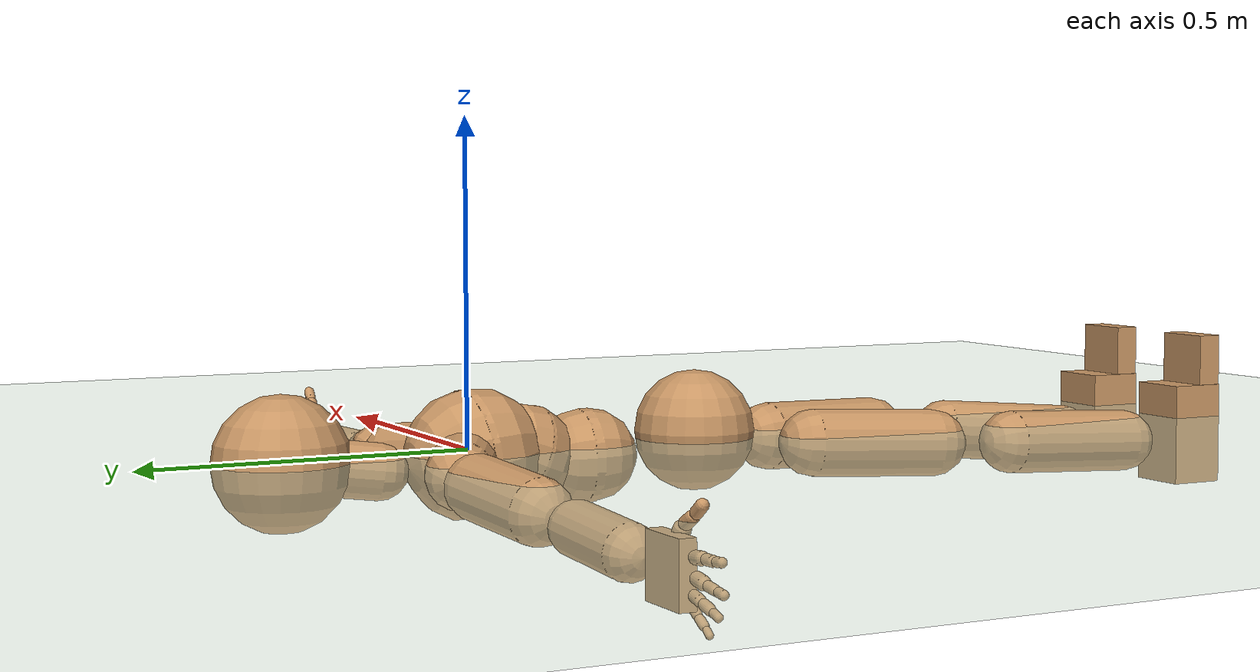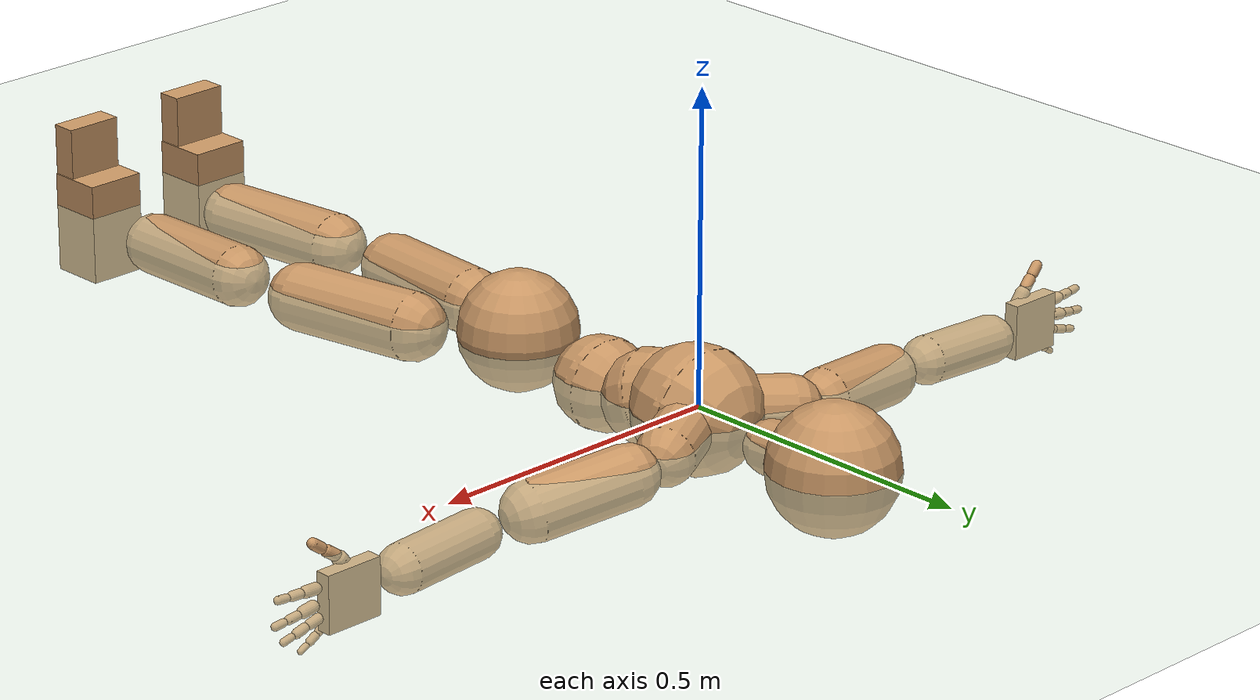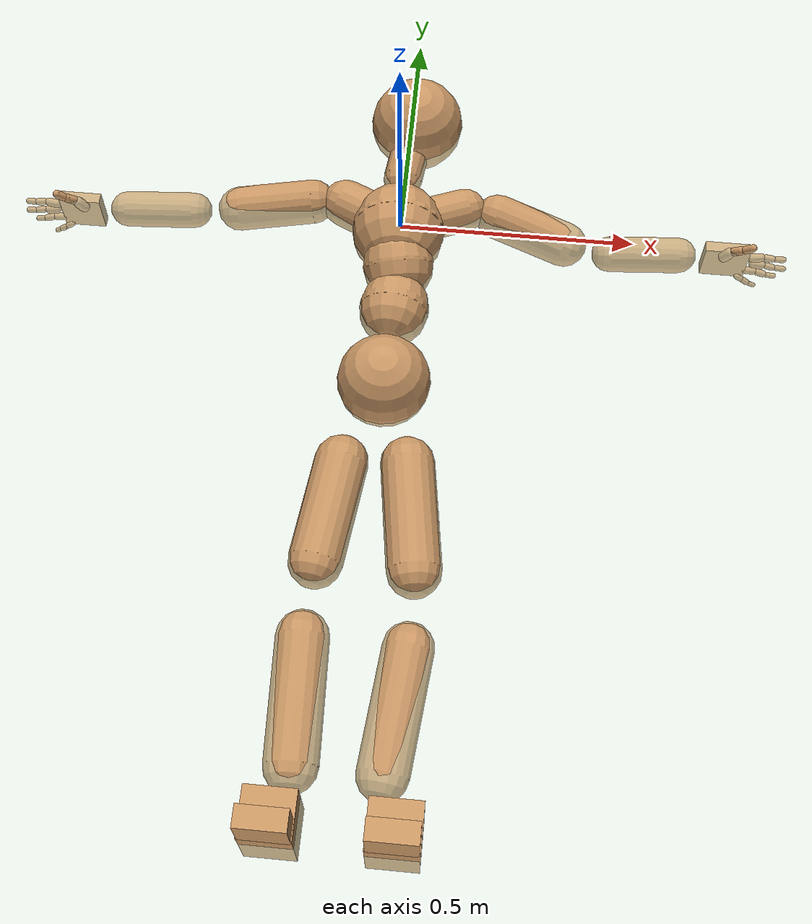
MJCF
<mujoco model="humanoid">
  <compiler coordinate="local"/>
  <default>
    <joint damping="0.0" armature="0.01" stiffness="0.0" limited="true"/>
    <geom conaffinity="1" condim="3" contype="7" margin="0.001" rgba="0.8 0.6 .4 1"/>
  </default>
  <asset>
    <texture type="skybox" builtin="gradient" rgb1=".4 .5 .6" rgb2="0 0 0" width="100" height="100"/>
    <texture builtin="flat" height="1278" mark="cross" markrgb="1 1 1" name="texgeom" random="0.01" rgb1="0.8 0.6 0.4" rgb2="0.8 0.6 0.4" type="cube" width="127"/>
    <texture builtin="checker" height="100" name="texplane" rgb1="0 0 0" rgb2="0.8 0.8 0.8" type="2d" width="100"/>
    <material name="MatPlane" reflectance="0.5" shininess="1" specular="1" texrepeat="60 60" texture="texplane"/>
    <material name="geom" texture="texgeom" texuniform="true"/>
  </asset>
  <worldbody>
    <light cutoff="100" diffuse="1 1 1" dir="-0 0 -1.3" directional="true" exponent="1" pos="0 0 1.3" specular=".1 .1 .1"/>
    <geom conaffinity="1" condim="3" name="floor" pos="0 0 0" rgba="0.8 0.9 0.8 1" size="100 100 .2" type="plane" material="MatPlane"/>
    <body name="Pelvis" pos="0.0027 -0.3858 0.0092">
      <freejoint name="Pelvis"/>
      <geom type="sphere" contype="1" conaffinity="1" density="4629.6296296296305" size="0.0955" pos="0.0000 0.0000 0.0000" name="Pelvis"/>
      <body name="L_Hip" pos="0.0532 -0.0955 -0.0251">
        <joint name="L_Hip_x" type="hinge" pos="0 0 0" axis="1 0 0" user="250 2.5 1 500 10 2" armature="0.01" range="-90.0000 90.0000" damping="0" stiffness="0"/>
        <joint name="L_Hip_y" type="hinge" pos="0 0 0" axis="0 1 0" user="250 2.5 1 500 10 2" armature="0.01" range="-90.0000 90.0000" damping="0" stiffness="0"/>
        <joint name="L_Hip_z" type="hinge" pos="0 0 0" axis="0 0 1" user="250 2.5 1 500 10 2" armature="0.01" range="-90.0000 90.0000" damping="0" stiffness="0"/>
        <geom type="capsule" contype="1" conaffinity="1" density="2040.816327" fromto="0.0110 -0.0739 -0.0018 0.0440 -0.2955 -0.0073" size="0.0549" name="L_Hip"/>
        <body name="L_Knee" pos="0.055 -0.3694 -0.0091">
          <joint name="L_Knee_x" type="hinge" pos="0 0 0" axis="1 0 0" user="250 2.5 1 500 10 2" armature="0.01" range="-180.0000 180.0000" damping="0" stiffness="0"/>
          <joint name="L_Knee_y" type="hinge" pos="0 0 0" axis="0 1 0" user="250 2.5 1 500 10 2" armature="0.01" range="-5.6250 5.6250" damping="0" stiffness="0"/>
          <joint name="L_Knee_z" type="hinge" pos="0 0 0" axis="0 0 1" user="250 2.5 1 500 10 2" armature="0.01" range="-5.6250 5.6250" damping="0" stiffness="0"/>
          <geom type="capsule" contype="1" conaffinity="1" density="1234.567901" fromto="-0.0081 -0.0784 -0.0061 -0.0324 -0.3136 -0.0246" size="0.0502" name="L_Knee"/>
          <body name="L_Ankle" pos="-0.0405 -0.392 -0.0307">
            <joint name="L_Ankle_x" type="hinge" pos="0 0 0" axis="1 0 0" user="150 2.5 1 500 10 2" armature="0.01" range="-90.0000 90.0000" damping="0" stiffness="0"/>
            <joint name="L_Ankle_y" type="hinge" pos="0 0 0" axis="0 1 0" user="150 2.5 1 500 10 2" armature="0.01" range="-90.0000 90.0000" damping="0" stiffness="0"/>
            <joint name="L_Ankle_z" type="hinge" pos="0 0 0" axis="0 0 1" user="150 2.5 1 500 10 2" armature="0.01" range="-90.0000 90.0000" damping="0" stiffness="0"/>
            <geom type="box" density="445.480415" pos="0.0401 -0.0282 0.0245" size="0.0492 0.0463 0.0833" quat="1.0000 0.0000 0.0000 0.0000" name="L_Ankle"/>
            <body name="L_Toe" pos="0.0467 -0.0579 0.1173">
              <joint name="L_Toe_x" type="hinge" pos="0 0 0" axis="1 0 0" user="150 1 1 500 1 1" armature="0.01" range="-90.0000 90.0000" damping="0" stiffness="0"/>
              <joint name="L_Toe_y" type="hinge" pos="0 0 0" axis="0 1 0" user="150 1 1 500 1 1" armature="0.01" range="-45.0000 45.0000" damping="0" stiffness="0"/>
              <joint name="L_Toe_z" type="hinge" pos="0 0 0" axis="0 0 1" user="150 1 1 500 1 1" armature="0.01" range="-45.0000 45.0000" damping="0" stiffness="0"/>
              <geom type="box" density="424.663019" pos="-0.0066 0.0037 0.0255" size="0.0471 0.0204 0.0489" quat="1.0000 0.0000 0.0000 0.0000" name="L_Toe"/>
            </body>
          </body>
        </body>
      </body>
      <body name="R_Hip" pos="-0.058 -0.1075 -0.0207">
        <joint name="R_Hip_x" type="hinge" pos="0 0 0" axis="1 0 0" user="250 2.5 1 500 10 2" armature="0.01" range="-90.0000 90.0000" damping="0" stiffness="0"/>
        <joint name="R_Hip_y" type="hinge" pos="0 0 0" axis="0 1 0" user="250 2.5 1 500 10 2" armature="0.01" range="-90.0000 90.0000" damping="0" stiffness="0"/>
        <joint name="R_Hip_z" type="hinge" pos="0 0 0" axis="0 0 1" user="250 2.5 1 500 10 2" armature="0.01" range="-90.0000 90.0000" damping="0" stiffness="0"/>
        <geom type="capsule" contype="1" conaffinity="1" density="2040.816327" fromto="-0.0090 -0.0704 -0.0032 -0.0359 -0.2815 -0.0127" size="0.0541" name="R_Hip"/>
        <body name="R_Knee" pos="-0.0449 -0.3519 -0.0158">
          <joint name="R_Knee_x" type="hinge" pos="0 0 0" axis="1 0 0" user="250 2.5 1 500 10 2" armature="0.01" range="-180.0000 180.0000" damping="0" stiffness="0"/>
          <joint name="R_Knee_y" type="hinge" pos="0 0 0" axis="0 1 0" user="250 2.5 1 500 10 2" armature="0.01" range="-5.6250 5.6250" damping="0" stiffness="0"/>
          <joint name="R_Knee_z" type="hinge" pos="0 0 0" axis="0 0 1" user="250 2.5 1 500 10 2" armature="0.01" range="-5.6250 5.6250" damping="0" stiffness="0"/>
          <geom type="capsule" contype="1" conaffinity="1" density="1234.567901" fromto="0.0028 -0.0800 -0.0039 0.0111 -0.3199 -0.0157" size="0.0517" name="R_Knee"/>
          <body name="R_Ankle" pos="0.0138 -0.3999 -0.0196">
            <joint name="R_Ankle_x" type="hinge" pos="0 0 0" axis="1 0 0" user="150 1 1 500 10 2" armature="0.01" range="-90.0000 90.0000" damping="0" stiffness="0"/>
            <joint name="R_Ankle_y" type="hinge" pos="0 0 0" axis="0 1 0" user="150 1 1 500 10 2" armature="0.01" range="-90.0000 90.0000" damping="0" stiffness="0"/>
            <joint name="R_Ankle_z" type="hinge" pos="0 0 0" axis="0 0 1" user="150 1 1 500 10 2" armature="0.01" range="-90.0000 90.0000" damping="0" stiffness="0"/>
            <geom type="box" density="445.468734" pos="-0.0241 -0.0258 0.0157" size="0.0492 0.0463 0.0833" quat="1.0000 0.0000 0.0000 0.0000" name="R_Ankle"/>
            <body name="R_Toe" pos="-0.0386 -0.0583 0.1181">
              <joint name="R_Toe_x" type="hinge" pos="0 0 0" axis="1 0 0" user="150 1 1 500 1 1" armature="0.01" range="-90.0000 90.0000" damping="0" stiffness="0"/>
              <joint name="R_Toe_y" type="hinge" pos="0 0 0" axis="0 1 0" user="150 1 1 500 1 1" armature="0.01" range="-45.0000 45.0000" damping="0" stiffness="0"/>
              <joint name="R_Toe_z" type="hinge" pos="0 0 0" axis="0 0 1" user="150 1 1 500 1 1" armature="0.01" range="-45.0000 45.0000" damping="0" stiffness="0"/>
              <geom type="box" density="424.668451" pos="0.0145 0.0065 0.0159" size="0.0471 0.0204 0.0489" quat="1.0000 0.0000 0.0000 0.0000" name="R_Toe"/>
            </body>
          </body>
        </body>
      </body>
      <body name="Torso" pos="-0.0017 0.1142 -0.0275">
        <joint name="Torso_x" type="hinge" pos="0 0 0" axis="1 0 0" user="500 5 1 500 10 2" armature="0.01" range="-60.0000 60.0000" damping="0" stiffness="0"/>
        <joint name="Torso_y" type="hinge" pos="0 0 0" axis="0 1 0" user="500 5 1 500 10 2" armature="0.01" range="-60.0000 60.0000" damping="0" stiffness="0"/>
        <joint name="Torso_z" type="hinge" pos="0 0 0" axis="0 0 1" user="500 5 1 500 10 2" armature="0.01" range="-60.0000 60.0000" damping="0" stiffness="0"/>
        <geom type="capsule" contype="1" conaffinity="1" density="2040.816327" fromto="0.0037 0.0676 -0.0018 0.0046 0.0826 -0.0022" size="0.0728" name="Torso"/>
        <body name="Spine" pos="0.0083 0.1503 -0.004">
          <joint name="Spine_x" type="hinge" pos="0 0 0" axis="1 0 0" user="500 5 1 500 10 2" armature="0.01" range="-60.0000 60.0000" damping="0" stiffness="0"/>
          <joint name="Spine_y" type="hinge" pos="0 0 0" axis="0 1 0" user="500 5 1 500 10 2" armature="0.01" range="-60.0000 60.0000" damping="0" stiffness="0"/>
          <joint name="Spine_z" type="hinge" pos="0 0 0" axis="0 0 1" user="500 5 1 500 10 2" armature="0.01" range="-60.0000 60.0000" damping="0" stiffness="0"/>
          <geom type="capsule" contype="1" conaffinity="1" density="2040.816327" fromto="-0.0049 0.0253 0.0106 -0.0060 0.0310 0.0129" size="0.0759" name="Spine"/>
          <body name="Chest" pos="-0.0109 0.0563 0.0235">
            <joint name="Chest_x" type="hinge" pos="0 0 0" axis="1 0 0" user="500 5 1 500 10 2" armature="0.01" range="-60.0000 60.0000" damping="0" stiffness="0"/>
            <joint name="Chest_y" type="hinge" pos="0 0 0" axis="0 1 0" user="500 5 1 500 10 2" armature="0.01" range="-60.0000 60.0000" damping="0" stiffness="0"/>
            <joint name="Chest_z" type="hinge" pos="0 0 0" axis="0 0 1" user="500 5 1 500 10 2" armature="0.01" range="-60.0000 60.0000" damping="0" stiffness="0"/>
            <geom type="capsule" contype="1" conaffinity="1" density="2040.816327" fromto="-0.0019 0.0517 -0.0069 -0.0023 0.0632 -0.0084" size="0.0995" name="Chest"/>
            <body name="Neck" pos="-0.0115 0.1709 -0.0279">
              <joint name="Neck_x" type="hinge" pos="0 0 0" axis="1 0 0" user="150 1 1 250 50 4" armature="0.01" range="-180.0000 180.0000" damping="0" stiffness="0"/>
              <joint name="Neck_y" type="hinge" pos="0 0 0" axis="0 1 0" user="150 1 1 250 50 4" armature="0.01" range="-180.0000 180.0000" damping="0" stiffness="0"/>
              <joint name="Neck_z" type="hinge" pos="0 0 0" axis="0 0 1" user="150 1 1 250 50 4" armature="0.01" range="-180.0000 180.0000" damping="0" stiffness="0"/>
              <geom type="capsule" contype="1" conaffinity="1" density="1000" fromto="0.0049 0.0355 0.0046 0.0194 0.1420 0.0182" size="0.0426" name="Neck"/>
              <body name="Head" pos="0.0243 0.1775 0.0228">
                <joint name="Head_x" type="hinge" pos="0 0 0" axis="1 0 0" user="150 1 1 250 50 4" armature="0.01" range="-90.0000 90.0000" damping="0" stiffness="0"/>
                <joint name="Head_y" type="hinge" pos="0 0 0" axis="0 1 0" user="150 1 1 250 50 4" armature="0.01" range="-90.0000 90.0000" damping="0" stiffness="0"/>
                <joint name="Head_z" type="hinge" pos="0 0 0" axis="0 0 1" user="150 1 1 250 50 4" armature="0.01" range="-90.0000 90.0000" damping="0" stiffness="0"/>
                <geom type="sphere" contype="1" conaffinity="1" density="1000" size="0.1016" pos="0.0000 0.0000 0.0000" name="Head"/>
              </body>
            </body>
            <body name="L_Thorax" pos="0.0452 0.0873 -0.0061">
              <joint name="L_Thorax_x" type="hinge" pos="0 0 0" axis="1 0 0" user="200 2 1 500 50 4" armature="0.01" range="-180.0000 180.0000" damping="0" stiffness="0"/>
              <joint name="L_Thorax_y" type="hinge" pos="0 0 0" axis="0 1 0" user="200 2 1 500 50 4" armature="0.01" range="-180.0000 180.0000" damping="0" stiffness="0"/>
              <joint name="L_Thorax_z" type="hinge" pos="0 0 0" axis="0 0 1" user="200 2 1 500 50 4" armature="0.01" range="-180.0000 180.0000" damping="0" stiffness="0"/>
              <geom type="capsule" contype="1" conaffinity="1" density="1000" fromto="0.0228 0.0110 -0.0027 0.0912 0.0441 -0.0107" size="0.0467" name="L_Thorax"/>
              <body name="L_Shoulder" pos="0.114 0.0551 -0.0134">
                <joint name="L_Shoulder_x" type="hinge" pos="0 0 0" axis="1 0 0" user="200 2 1 500 50 4" armature="0.01" range="-180.0000 180.0000" damping="0" stiffness="0"/>
                <joint name="L_Shoulder_y" type="hinge" pos="0 0 0" axis="0 1 0" user="200 2 1 500 50 4" armature="0.01" range="-180.0000 180.0000" damping="0" stiffness="0"/>
                <joint name="L_Shoulder_z" type="hinge" pos="0 0 0" axis="0 0 1" user="200 2 1 500 50 4" armature="0.01" range="-180.0000 180.0000" damping="0" stiffness="0"/>
                <geom type="capsule" contype="1" conaffinity="1" density="1000" fromto="0.0499 -0.0144 -0.0077 0.1995 -0.0577 -0.0308" size="0.0483" name="L_Shoulder"/>
                <body name="L_Elbow" pos="0.2494 -0.0721 -0.0385">
                  <joint name="L_Elbow_x" type="hinge" pos="0 0 0" axis="1 0 0" user="150 1 1 150 10 2" armature="0.01" range="-720.0000 720.0000" damping="0" stiffness="0"/>
                  <joint name="L_Elbow_y" type="hinge" pos="0 0 0" axis="0 1 0" user="150 1 1 150 10 2" armature="0.01" range="-720.0000 720.0000" damping="0" stiffness="0"/>
                  <joint name="L_Elbow_z" type="hinge" pos="0 0 0" axis="0 0 1" user="150 1 1 150 10 2" armature="0.01" range="-720.0000 720.0000" damping="0" stiffness="0"/>
                  <geom type="capsule" contype="1" conaffinity="1" density="1000" fromto="0.0500 0.0039 -0.0005 0.2000 0.0158 -0.0020" size="0.0384" name="L_Elbow"/>
                  <body name="L_Wrist" pos="0.25 0.0197 -0.0025">
                    <joint name="L_Wrist_x" type="hinge" pos="0 0 0" axis="1 0 0" user="100 1 1 150 1 1" armature="0.01" range="-180.0000 180.0000" damping="0" stiffness="0"/>
                    <joint name="L_Wrist_y" type="hinge" pos="0 0 0" axis="0 1 0" user="100 1 1 150 1 1" armature="0.01" range="-180.0000 180.0000" damping="0" stiffness="0"/>
                    <joint name="L_Wrist_z" type="hinge" pos="0 0 0" axis="0 0 1" user="100 1 1 150 1 1" armature="0.01" range="-180.0000 180.0000" damping="0" stiffness="0"/>
                    <geom type="box" density="1207.916476" pos="0.0517 -0.0016 -0.0030" size="0.0478 0.0121 0.0451" quat="1.0000 0.0000 0.0000 0.0000" name="L_Wrist"/>
                    <body name="L_Index1" pos="0.1006 -0.0088 0.019">
                      <joint name="L_Index1_x" type="hinge" pos="0 0 0" axis="1 0 0" user="100 10 1 150" armature="0.01" range="-180.0000 180.0000" damping="0" stiffness="0"/>
                      <joint name="L_Index1_y" type="hinge" pos="0 0 0" axis="0 1 0" user="100 10 1 150" armature="0.01" range="-180.0000 180.0000" damping="0" stiffness="0"/>
                      <joint name="L_Index1_z" type="hinge" pos="0 0 0" axis="0 0 1" user="100 10 1 150" armature="0.01" range="-180.0000 180.0000" damping="0" stiffness="0"/>
                      <geom type="capsule" contype="1" conaffinity="1" density="1000" fromto="0.0063 0.0004 0.0005 0.0252 0.0018 0.0022" size="0.0091" name="L_Index1"/>
                      <body name="L_Index2" pos="0.0316 0.0022 0.0027">
                        <joint name="L_Index2_x" type="hinge" pos="0 0 0" axis="1 0 0" user="100 10 1 150" armature="0.01" range="-180.0000 180.0000" damping="0" stiffness="0"/>
                        <joint name="L_Index2_y" type="hinge" pos="0 0 0" axis="0 1 0" user="100 10 1 150" armature="0.01" range="-180.0000 180.0000" damping="0" stiffness="0"/>
                        <joint name="L_Index2_z" type="hinge" pos="0 0 0" axis="0 0 1" user="100 10 1 150" armature="0.01" range="-180.0000 180.0000" damping="0" stiffness="0"/>
                        <geom type="capsule" contype="1" conaffinity="1" density="1000" fromto="0.0044 -0.0005 -0.0000 0.0178 -0.0019 -0.0001" size="0.0075" name="L_Index2"/>
                        <body name="L_Index3" pos="0.0222 -0.0024 -0.0001">
                          <joint name="L_Index3_x" type="hinge" pos="0 0 0" axis="1 0 0" user="100 10 1 150" armature="0.01" range="-180.0000 180.0000" damping="0" stiffness="0"/>
                          <joint name="L_Index3_y" type="hinge" pos="0 0 0" axis="0 1 0" user="100 10 1 150" armature="0.01" range="-180.0000 180.0000" damping="0" stiffness="0"/>
                          <joint name="L_Index3_z" type="hinge" pos="0 0 0" axis="0 0 1" user="100 10 1 150" armature="0.01" range="-180.0000 180.0000" damping="0" stiffness="0"/>
                          <geom type="capsule" contype="1" conaffinity="1" density="1000" fromto="0.0048 -0.0001 0.0004 0.0194 -0.0003 0.0015" size="0.0064" name="L_Index3"/>
                        </body>
                      </body>
                    </body>
                    <body name="L_Middle1" pos="0.108 -0.0066 -0.0041">
                      <joint name="L_Middle1_x" type="hinge" pos="0 0 0" axis="1 0 0" user="100 10 1 150" armature="0.01" range="-180.0000 180.0000" damping="0" stiffness="0"/>
                      <joint name="L_Middle1_y" type="hinge" pos="0 0 0" axis="0 1 0" user="100 10 1 150" armature="0.01" range="-180.0000 180.0000" damping="0" stiffness="0"/>
                      <joint name="L_Middle1_z" type="hinge" pos="0 0 0" axis="0 0 1" user="100 10 1 150" armature="0.01" range="-180.0000 180.0000" damping="0" stiffness="0"/>
                      <geom type="capsule" contype="1" conaffinity="1" density="1000" fromto="0.0060 0.0001 -0.0008 0.0241 0.0006 -0.0033" size="0.0093" name="L_Middle1"/>
                      <body name="L_Middle2" pos="0.0301 0.0007 -0.0041">
                        <joint name="L_Middle2_x" type="hinge" pos="0 0 0" axis="1 0 0" user="100 10 1 150" armature="0.01" range="-180.0000 180.0000" damping="0" stiffness="0"/>
                        <joint name="L_Middle2_y" type="hinge" pos="0 0 0" axis="0 1 0" user="100 10 1 150" armature="0.01" range="-180.0000 180.0000" damping="0" stiffness="0"/>
                        <joint name="L_Middle2_z" type="hinge" pos="0 0 0" axis="0 0 1" user="100 10 1 150" armature="0.01" range="-180.0000 180.0000" damping="0" stiffness="0"/>
                        <geom type="capsule" contype="1" conaffinity="1" density="1000" fromto="0.0046 -0.0004 -0.0008 0.0185 -0.0016 -0.0033" size="0.007" name="L_Middle2"/>
                        <body name="L_Middle3" pos="0.0231 -0.002 -0.0041">
                          <joint name="L_Middle3_x" type="hinge" pos="0 0 0" axis="1 0 0" user="100 10 1 150" armature="0.01" range="-180.0000 180.0000" damping="0" stiffness="0"/>
                          <joint name="L_Middle3_y" type="hinge" pos="0 0 0" axis="0 1 0" user="100 10 1 150" armature="0.01" range="-180.0000 180.0000" damping="0" stiffness="0"/>
                          <joint name="L_Middle3_z" type="hinge" pos="0 0 0" axis="0 0 1" user="100 10 1 150" armature="0.01" range="-180.0000 180.0000" damping="0" stiffness="0"/>
                          <geom type="capsule" contype="1" conaffinity="1" density="1000" fromto="0.0050 0.0000 -0.0004 0.0201 0.0000 -0.0017" size="0.0061" name="L_Middle3"/>
                        </body>
                      </body>
                    </body>
                    <body name="L_Pinky1" pos="0.0833 -0.0149 -0.0429">
                      <joint name="L_Pinky1_x" type="hinge" pos="0 0 0" axis="1 0 0" user="100 10 1 150" armature="0.01" range="-180.0000 180.0000" damping="0" stiffness="0"/>
                      <joint name="L_Pinky1_y" type="hinge" pos="0 0 0" axis="0 1 0" user="100 10 1 150" armature="0.01" range="-180.0000 180.0000" damping="0" stiffness="0"/>
                      <joint name="L_Pinky1_z" type="hinge" pos="0 0 0" axis="0 0 1" user="100 10 1 150" armature="0.01" range="-180.0000 180.0000" damping="0" stiffness="0"/>
                      <geom type="capsule" contype="1" conaffinity="1" density="1000" fromto="0.0031 -0.0002 -0.0023 0.0125 -0.0009 -0.0093" size="0.0066" name="L_Pinky1"/>
                      <body name="L_Pinky2" pos="0.0156 -0.0011 -0.0116">
                        <joint name="L_Pinky2_x" type="hinge" pos="0 0 0" axis="1 0 0" user="100 10 1 150" armature="0.01" range="-180.0000 180.0000" damping="0" stiffness="0"/>
                        <joint name="L_Pinky2_y" type="hinge" pos="0 0 0" axis="0 1 0" user="100 10 1 150" armature="0.01" range="-180.0000 180.0000" damping="0" stiffness="0"/>
                        <joint name="L_Pinky2_z" type="hinge" pos="0 0 0" axis="0 0 1" user="100 10 1 150" armature="0.01" range="-180.0000 180.0000" damping="0" stiffness="0"/>
                        <geom type="capsule" contype="1" conaffinity="1" density="1000" fromto="0.0031 -0.0003 -0.0022 0.0124 -0.0013 -0.0087" size="0.0064" name="L_Pinky2"/>
                        <body name="L_Pinky3" pos="0.0155 -0.0017 -0.0109">
                          <joint name="L_Pinky3_x" type="hinge" pos="0 0 0" axis="1 0 0" user="100 10 1 150" armature="0.01" range="-180.0000 180.0000" damping="0" stiffness="0"/>
                          <joint name="L_Pinky3_y" type="hinge" pos="0 0 0" axis="0 1 0" user="100 10 1 150" armature="0.01" range="-180.0000 180.0000" damping="0" stiffness="0"/>
                          <joint name="L_Pinky3_z" type="hinge" pos="0 0 0" axis="0 0 1" user="100 10 1 150" armature="0.01" range="-180.0000 180.0000" damping="0" stiffness="0"/>
                          <geom type="capsule" contype="1" conaffinity="1" density="1000" fromto="0.0035 0.0001 -0.0018 0.0140 0.0003 -0.0071" size="0.0049" name="L_Pinky3"/>
                        </body>
                      </body>
                    </body>
                    <body name="L_Ring1" pos="0.0964 -0.0095 -0.0269">
                      <joint name="L_Ring1_x" type="hinge" pos="0 0 0" axis="1 0 0" user="100 10 1 150" armature="0.01" range="-180.0000 180.0000" damping="0" stiffness="0"/>
                      <joint name="L_Ring1_y" type="hinge" pos="0 0 0" axis="0 1 0" user="100 10 1 150" armature="0.01" range="-180.0000 180.0000" damping="0" stiffness="0"/>
                      <joint name="L_Ring1_z" type="hinge" pos="0 0 0" axis="0 0 1" user="100 10 1 150" armature="0.01" range="-180.0000 180.0000" damping="0" stiffness="0"/>
                      <geom type="capsule" contype="1" conaffinity="1" density="1000" fromto="0.0055 0.0003 -0.0010 0.0222 0.0013 -0.0041" size="0.0079" name="L_Ring1"/>
                      <body name="L_Ring2" pos="0.0277 0.0016 -0.0052">
                        <joint name="L_Ring2_x" type="hinge" pos="0 0 0" axis="1 0 0" user="100 10 1 150" armature="0.01" range="-180.0000 180.0000" damping="0" stiffness="0"/>
                        <joint name="L_Ring2_y" type="hinge" pos="0 0 0" axis="0 1 0" user="100 10 1 150" armature="0.01" range="-180.0000 180.0000" damping="0" stiffness="0"/>
                        <joint name="L_Ring2_z" type="hinge" pos="0 0 0" axis="0 0 1" user="100 10 1 150" armature="0.01" range="-180.0000 180.0000" damping="0" stiffness="0"/>
                        <geom type="capsule" contype="1" conaffinity="1" density="1000" fromto="0.0045 -0.0003 -0.0014 0.0180 -0.0011 -0.0056" size="0.0074" name="L_Ring2"/>
                        <body name="L_Ring3" pos="0.0226 -0.0014 -0.007">
                          <joint name="L_Ring3_x" type="hinge" pos="0 0 0" axis="1 0 0" user="100 10 1 150" armature="0.01" range="-180.0000 180.0000" damping="0" stiffness="0"/>
                          <joint name="L_Ring3_y" type="hinge" pos="0 0 0" axis="0 1 0" user="100 10 1 150" armature="0.01" range="-180.0000 180.0000" damping="0" stiffness="0"/>
                          <joint name="L_Ring3_z" type="hinge" pos="0 0 0" axis="0 0 1" user="100 10 1 150" armature="0.01" range="-180.0000 180.0000" damping="0" stiffness="0"/>
                          <geom type="capsule" contype="1" conaffinity="1" density="1000" fromto="0.0049 0.0001 -0.0010 0.0196 0.0005 -0.0040" size="0.0057" name="L_Ring3"/>
                        </body>
                      </body>
                    </body>
                    <body name="L_Thumb1" pos="0.0403 -0.0183 0.0252">
                      <joint name="L_Thumb1_x" type="hinge" pos="0 0 0" axis="1 0 0" user="100 10 1 150" armature="0.01" range="-180.0000 180.0000" damping="0" stiffness="0"/>
                      <joint name="L_Thumb1_y" type="hinge" pos="0 0 0" axis="0 1 0" user="100 10 1 150" armature="0.01" range="-180.0000 180.0000" damping="0" stiffness="0"/>
                      <joint name="L_Thumb1_z" type="hinge" pos="0 0 0" axis="0 0 1" user="100 10 1 150" armature="0.01" range="-180.0000 180.0000" damping="0" stiffness="0"/>
                      <geom type="capsule" contype="1" conaffinity="1" density="1000" fromto="0.0034 0.0002 0.0049 0.0137 0.0007 0.0198" size="0.0119" name="L_Thumb1"/>
                      <body name="L_Thumb2" pos="0.0171 0.0009 0.0247">
                        <joint name="L_Thumb2_x" type="hinge" pos="0 0 0" axis="1 0 0" user="100 10 1 150" armature="0.01" range="-180.0000 180.0000" damping="0" stiffness="0"/>
                        <joint name="L_Thumb2_y" type="hinge" pos="0 0 0" axis="0 1 0" user="100 10 1 150" armature="0.01" range="-180.0000 180.0000" damping="0" stiffness="0"/>
                        <joint name="L_Thumb2_z" type="hinge" pos="0 0 0" axis="0 0 1" user="100 10 1 150" armature="0.01" range="-180.0000 180.0000" damping="0" stiffness="0"/>
                        <geom type="capsule" contype="1" conaffinity="1" density="1000" fromto="0.0041 -0.0010 0.0030 0.0166 -0.0039 0.0121" size="0.0094" name="L_Thumb2"/>
                        <body name="L_Thumb3" pos="0.0207 -0.0048 0.0152">
                          <joint name="L_Thumb3_x" type="hinge" pos="0 0 0" axis="1 0 0" user="100 10 1 150" armature="0.01" range="-180.0000 180.0000" damping="0" stiffness="0"/>
                          <joint name="L_Thumb3_y" type="hinge" pos="0 0 0" axis="0 1 0" user="100 10 1 150" armature="0.01" range="-180.0000 180.0000" damping="0" stiffness="0"/>
                          <joint name="L_Thumb3_z" type="hinge" pos="0 0 0" axis="0 0 1" user="100 10 1 150" armature="0.01" range="-180.0000 180.0000" damping="0" stiffness="0"/>
                          <geom type="capsule" contype="1" conaffinity="1" density="1000" fromto="0.0045 -0.0006 0.0034 0.0182 -0.0023 0.0137" size="0.0086" name="L_Thumb3"/>
                        </body>
                      </body>
                    </body>
                  </body>
                </body>
              </body>
            </body>
            <body name="R_Thorax" pos="-0.0461 0.0866 -0.0117">
              <joint name="R_Thorax_x" type="hinge" pos="0 0 0" axis="1 0 0" user="200 2 1 150 10 2" armature="0.01" range="-180.0000 180.0000" damping="0" stiffness="0"/>
              <joint name="R_Thorax_y" type="hinge" pos="0 0 0" axis="0 1 0" user="200 2 1 150 10 2" armature="0.01" range="-180.0000 180.0000" damping="0" stiffness="0"/>
              <joint name="R_Thorax_z" type="hinge" pos="0 0 0" axis="0 0 1" user="200 2 1 150 10 2" armature="0.01" range="-180.0000 180.0000" damping="0" stiffness="0"/>
              <geom type="capsule" contype="1" conaffinity="1" density="1000" fromto="-0.0197 0.0103 -0.0020 -0.0786 0.0410 -0.0080" size="0.0514" name="R_Thorax"/>
              <body name="R_Shoulder" pos="-0.0983 0.0513 -0.01">
                <joint name="R_Shoulder_x" type="hinge" pos="0 0 0" axis="1 0 0" user="200 2 1 250 10 2" armature="0.01" range="-180.0000 180.0000" damping="0" stiffness="0"/>
                <joint name="R_Shoulder_y" type="hinge" pos="0 0 0" axis="0 1 0" user="200 2 1 250 10 2" armature="0.01" range="-180.0000 180.0000" damping="0" stiffness="0"/>
                <joint name="R_Shoulder_z" type="hinge" pos="0 0 0" axis="0 0 1" user="200 2 1 250 10 2" armature="0.01" range="-180.0000 180.0000" damping="0" stiffness="0"/>
                <geom type="capsule" contype="1" conaffinity="1" density="1000" fromto="-0.0531 -0.0078 -0.0049 -0.2126 -0.0312 -0.0195" size="0.0482" name="R_Shoulder"/>
                <body name="R_Elbow" pos="-0.2657 -0.039 -0.0244">
                  <joint name="R_Elbow_x" type="hinge" pos="0 0 0" axis="1 0 0" user="150 1 1 150 10 2" armature="0.01" range="-720.0000 720.0000" damping="0" stiffness="0"/>
                  <joint name="R_Elbow_y" type="hinge" pos="0 0 0" axis="0 1 0" user="150 1 1 150 10 2" armature="0.01" range="-720.0000 720.0000" damping="0" stiffness="0"/>
                  <joint name="R_Elbow_z" type="hinge" pos="0 0 0" axis="0 0 1" user="150 1 1 150 10 2" armature="0.01" range="-720.0000 720.0000" damping="0" stiffness="0"/>
                  <geom type="capsule" contype="1" conaffinity="1" density="1000" fromto="-0.0494 -0.0011 -0.0030 -0.1976 -0.0046 -0.0120" size="0.0387" name="R_Elbow"/>
                  <body name="R_Wrist" pos="-0.247 -0.0057 -0.0149">
                    <joint name="R_Wrist_x" type="hinge" pos="0 0 0" axis="1 0 0" user="100 1 1 150 1 1" armature="0.01" range="-180.0000 180.0000" damping="0" stiffness="0"/>
                    <joint name="R_Wrist_y" type="hinge" pos="0 0 0" axis="0 1 0" user="100 1 1 150 1 1" armature="0.01" range="-180.0000 180.0000" damping="0" stiffness="0"/>
                    <joint name="R_Wrist_z" type="hinge" pos="0 0 0" axis="0 0 1" user="100 1 1 150 1 1" armature="0.01" range="-180.0000 180.0000" damping="0" stiffness="0"/>
                    <geom type="box" density="1237.912336" pos="-0.0530 -0.0048 -0.0025" size="0.0449 0.0121 0.0451" quat="1.0000 0.0000 0.0000 0.0000" name="R_Wrist"/>
                    <body name="R_Index1" pos="-0.0986 -0.012 0.0195">
                      <joint name="R_Index1_x" type="hinge" pos="0 0 0" axis="1 0 0" user="100 10 1 150" armature="0.01" range="-180.0000 180.0000" damping="0" stiffness="0"/>
                      <joint name="R_Index1_y" type="hinge" pos="0 0 0" axis="0 1 0" user="100 10 1 150" armature="0.01" range="-180.0000 180.0000" damping="0" stiffness="0"/>
                      <joint name="R_Index1_z" type="hinge" pos="0 0 0" axis="0 0 1" user="100 10 1 150" armature="0.01" range="-180.0000 180.0000" damping="0" stiffness="0"/>
                      <geom type="capsule" contype="1" conaffinity="1" density="1000" fromto="-0.0063 0.0004 0.0005 -0.0252 0.0018 0.0022" size="0.0091" name="R_Index1"/>
                      <body name="R_Index2" pos="-0.0316 0.0022 0.0027">
                        <joint name="R_Index2_x" type="hinge" pos="0 0 0" axis="1 0 0" user="100 10 1 150" armature="0.01" range="-180.0000 180.0000" damping="0" stiffness="0"/>
                        <joint name="R_Index2_y" type="hinge" pos="0 0 0" axis="0 1 0" user="100 10 1 150" armature="0.01" range="-180.0000 180.0000" damping="0" stiffness="0"/>
                        <joint name="R_Index2_z" type="hinge" pos="0 0 0" axis="0 0 1" user="100 10 1 150" armature="0.01" range="-180.0000 180.0000" damping="0" stiffness="0"/>
                        <geom type="capsule" contype="1" conaffinity="1" density="1000" fromto="-0.0044 -0.0005 -0.0000 -0.0178 -0.0019 -0.0001" size="0.0075" name="R_Index2"/>
                        <body name="R_Index3" pos="-0.0222 -0.0024 -0.0001">
                          <joint name="R_Index3_x" type="hinge" pos="0 0 0" axis="1 0 0" user="100 10 1 150" armature="0.01" range="-180.0000 180.0000" damping="0" stiffness="0"/>
                          <joint name="R_Index3_y" type="hinge" pos="0 0 0" axis="0 1 0" user="100 10 1 150" armature="0.01" range="-180.0000 180.0000" damping="0" stiffness="0"/>
                          <joint name="R_Index3_z" type="hinge" pos="0 0 0" axis="0 0 1" user="100 10 1 150" armature="0.01" range="-180.0000 180.0000" damping="0" stiffness="0"/>
                          <geom type="capsule" contype="1" conaffinity="1" density="1000" fromto="-0.0040 -0.0001 0.0004 -0.0162 -0.0003 0.0015" size="0.0066" name="R_Index3"/>
                        </body>
                      </body>
                    </body>
                    <body name="R_Middle1" pos="-0.106 -0.0098 -0.0036">
                      <joint name="R_Middle1_x" type="hinge" pos="0 0 0" axis="1 0 0" user="100 10 1 150" armature="0.01" range="-180.0000 180.0000" damping="0" stiffness="0"/>
                      <joint name="R_Middle1_y" type="hinge" pos="0 0 0" axis="0 1 0" user="100 10 1 150" armature="0.01" range="-180.0000 180.0000" damping="0" stiffness="0"/>
                      <joint name="R_Middle1_z" type="hinge" pos="0 0 0" axis="0 0 1" user="100 10 1 150" armature="0.01" range="-180.0000 180.0000" damping="0" stiffness="0"/>
                      <geom type="capsule" contype="1" conaffinity="1" density="1000" fromto="-0.0060 0.0001 -0.0008 -0.0241 0.0006 -0.0033" size="0.0093" name="R_Middle1"/>
                      <body name="R_Middle2" pos="-0.0301 0.0007 -0.0041">
                        <joint name="R_Middle2_x" type="hinge" pos="0 0 0" axis="1 0 0" user="100 10 1 150" armature="0.01" range="-180.0000 180.0000" damping="0" stiffness="0"/>
                        <joint name="R_Middle2_y" type="hinge" pos="0 0 0" axis="0 1 0" user="100 10 1 150" armature="0.01" range="-180.0000 180.0000" damping="0" stiffness="0"/>
                        <joint name="R_Middle2_z" type="hinge" pos="0 0 0" axis="0 0 1" user="100 10 1 150" armature="0.01" range="-180.0000 180.0000" damping="0" stiffness="0"/>
                        <geom type="capsule" contype="1" conaffinity="1" density="1000" fromto="-0.0046 -0.0004 -0.0008 -0.0185 -0.0016 -0.0033" size="0.007" name="R_Middle2"/>
                        <body name="R_Middle3" pos="-0.0231 -0.002 -0.0041">
                          <joint name="R_Middle3_x" type="hinge" pos="0 0 0" axis="1 0 0" user="100 10 1 150" armature="0.01" range="-180.0000 180.0000" damping="0" stiffness="0"/>
                          <joint name="R_Middle3_y" type="hinge" pos="0 0 0" axis="0 1 0" user="100 10 1 150" armature="0.01" range="-180.0000 180.0000" damping="0" stiffness="0"/>
                          <joint name="R_Middle3_z" type="hinge" pos="0 0 0" axis="0 0 1" user="100 10 1 150" armature="0.01" range="-180.0000 180.0000" damping="0" stiffness="0"/>
                          <geom type="capsule" contype="1" conaffinity="1" density="1000" fromto="-0.0042 0.0000 -0.0004 -0.0169 0.0000 -0.0017" size="0.0064" name="R_Middle3"/>
                        </body>
                      </body>
                    </body>
                    <body name="R_Pinky1" pos="-0.0813 -0.0181 -0.0424">
                      <joint name="R_Pinky1_x" type="hinge" pos="0 0 0" axis="1 0 0" user="100 10 1 150" armature="0.01" range="-180.0000 180.0000" damping="0" stiffness="0"/>
                      <joint name="R_Pinky1_y" type="hinge" pos="0 0 0" axis="0 1 0" user="100 10 1 150" armature="0.01" range="-180.0000 180.0000" damping="0" stiffness="0"/>
                      <joint name="R_Pinky1_z" type="hinge" pos="0 0 0" axis="0 0 1" user="100 10 1 150" armature="0.01" range="-180.0000 180.0000" damping="0" stiffness="0"/>
                      <geom type="capsule" contype="1" conaffinity="1" density="1000" fromto="-0.0031 -0.0002 -0.0023 -0.0125 -0.0009 -0.0093" size="0.0066" name="R_Pinky1"/>
                      <body name="R_Pinky2" pos="-0.0156 -0.0011 -0.0116">
                        <joint name="R_Pinky2_x" type="hinge" pos="0 0 0" axis="1 0 0" user="100 10 1 150" armature="0.01" range="-180.0000 180.0000" damping="0" stiffness="0"/>
                        <joint name="R_Pinky2_y" type="hinge" pos="0 0 0" axis="0 1 0" user="100 10 1 150" armature="0.01" range="-180.0000 180.0000" damping="0" stiffness="0"/>
                        <joint name="R_Pinky2_z" type="hinge" pos="0 0 0" axis="0 0 1" user="100 10 1 150" armature="0.01" range="-180.0000 180.0000" damping="0" stiffness="0"/>
                        <geom type="capsule" contype="1" conaffinity="1" density="1000" fromto="-0.0031 -0.0003 -0.0022 -0.0124 -0.0013 -0.0087" size="0.0064" name="R_Pinky2"/>
                        <body name="R_Pinky3" pos="-0.0155 -0.0017 -0.0109">
                          <joint name="R_Pinky3_x" type="hinge" pos="0 0 0" axis="1 0 0" user="100 10 1 150" armature="0.01" range="-180.0000 180.0000" damping="0" stiffness="0"/>
                          <joint name="R_Pinky3_y" type="hinge" pos="0 0 0" axis="0 1 0" user="100 10 1 150" armature="0.01" range="-180.0000 180.0000" damping="0" stiffness="0"/>
                          <joint name="R_Pinky3_z" type="hinge" pos="0 0 0" axis="0 0 1" user="100 10 1 150" armature="0.01" range="-180.0000 180.0000" damping="0" stiffness="0"/>
                          <geom type="capsule" contype="1" conaffinity="1" density="1000" fromto="-0.0027 0.0001 -0.0018 -0.0108 0.0003 -0.0071" size="0.0051" name="R_Pinky3"/>
                        </body>
                      </body>
                    </body>
                    <body name="R_Ring1" pos="-0.0944 -0.0127 -0.0264">
                      <joint name="R_Ring1_x" type="hinge" pos="0 0 0" axis="1 0 0" user="100 10 1 150" armature="0.01" range="-180.0000 180.0000" damping="0" stiffness="0"/>
                      <joint name="R_Ring1_y" type="hinge" pos="0 0 0" axis="0 1 0" user="100 10 1 150" armature="0.01" range="-180.0000 180.0000" damping="0" stiffness="0"/>
                      <joint name="R_Ring1_z" type="hinge" pos="0 0 0" axis="0 0 1" user="100 10 1 150" armature="0.01" range="-180.0000 180.0000" damping="0" stiffness="0"/>
                      <geom type="capsule" contype="1" conaffinity="1" density="1000" fromto="-0.0055 0.0003 -0.0010 -0.0222 0.0013 -0.0041" size="0.0079" name="R_Ring1"/>
                      <body name="R_Ring2" pos="-0.0277 0.0016 -0.0052">
                        <joint name="R_Ring2_x" type="hinge" pos="0 0 0" axis="1 0 0" user="100 10 1 150" armature="0.01" range="-180.0000 180.0000" damping="0" stiffness="0"/>
                        <joint name="R_Ring2_y" type="hinge" pos="0 0 0" axis="0 1 0" user="100 10 1 150" armature="0.01" range="-180.0000 180.0000" damping="0" stiffness="0"/>
                        <joint name="R_Ring2_z" type="hinge" pos="0 0 0" axis="0 0 1" user="100 10 1 150" armature="0.01" range="-180.0000 180.0000" damping="0" stiffness="0"/>
                        <geom type="capsule" contype="1" conaffinity="1" density="1000" fromto="-0.0045 -0.0003 -0.0014 -0.0180 -0.0011 -0.0056" size="0.0074" name="R_Ring2"/>
                        <body name="R_Ring3" pos="-0.0226 -0.0014 -0.007">
                          <joint name="R_Ring3_x" type="hinge" pos="0 0 0" axis="1 0 0" user="100 10 1 150" armature="0.01" range="-180.0000 180.0000" damping="0" stiffness="0"/>
                          <joint name="R_Ring3_y" type="hinge" pos="0 0 0" axis="0 1 0" user="100 10 1 150" armature="0.01" range="-180.0000 180.0000" damping="0" stiffness="0"/>
                          <joint name="R_Ring3_z" type="hinge" pos="0 0 0" axis="0 0 1" user="100 10 1 150" armature="0.01" range="-180.0000 180.0000" damping="0" stiffness="0"/>
                          <geom type="capsule" contype="1" conaffinity="1" density="1000" fromto="-0.0041 0.0001 -0.0010 -0.0164 0.0005 -0.0040" size="0.006" name="R_Ring3"/>
                        </body>
                      </body>
                    </body>
                    <body name="R_Thumb1" pos="-0.0383 -0.0215 0.0257">
                      <joint name="R_Thumb1_x" type="hinge" pos="0 0 0" axis="1 0 0" user="100 10 1 150" armature="0.01" range="-180.0000 180.0000" damping="0" stiffness="0"/>
                      <joint name="R_Thumb1_y" type="hinge" pos="0 0 0" axis="0 1 0" user="100 10 1 150" armature="0.01" range="-180.0000 180.0000" damping="0" stiffness="0"/>
                      <joint name="R_Thumb1_z" type="hinge" pos="0 0 0" axis="0 0 1" user="100 10 1 150" armature="0.01" range="-180.0000 180.0000" damping="0" stiffness="0"/>
                      <geom type="capsule" contype="1" conaffinity="1" density="1000" fromto="-0.0034 0.0002 0.0049 -0.0137 0.0007 0.0198" size="0.0119" name="R_Thumb1"/>
                      <body name="R_Thumb2" pos="-0.0171 0.0009 0.0247">
                        <joint name="R_Thumb2_x" type="hinge" pos="0 0 0" axis="1 0 0" user="100 10 1 150" armature="0.01" range="-180.0000 180.0000" damping="0" stiffness="0"/>
                        <joint name="R_Thumb2_y" type="hinge" pos="0 0 0" axis="0 1 0" user="100 10 1 150" armature="0.01" range="-180.0000 180.0000" damping="0" stiffness="0"/>
                        <joint name="R_Thumb2_z" type="hinge" pos="0 0 0" axis="0 0 1" user="100 10 1 150" armature="0.01" range="-180.0000 180.0000" damping="0" stiffness="0"/>
                        <geom type="capsule" contype="1" conaffinity="1" density="1000" fromto="-0.0041 -0.0010 0.0030 -0.0166 -0.0039 0.0121" size="0.0094" name="R_Thumb2"/>
                        <body name="R_Thumb3" pos="-0.0207 -0.0048 0.0152">
                          <joint name="R_Thumb3_x" type="hinge" pos="0 0 0" axis="1 0 0" user="100 10 1 150" armature="0.01" range="-180.0000 180.0000" damping="0" stiffness="0"/>
                          <joint name="R_Thumb3_y" type="hinge" pos="0 0 0" axis="0 1 0" user="100 10 1 150" armature="0.01" range="-180.0000 180.0000" damping="0" stiffness="0"/>
                          <joint name="R_Thumb3_z" type="hinge" pos="0 0 0" axis="0 0 1" user="100 10 1 150" armature="0.01" range="-180.0000 180.0000" damping="0" stiffness="0"/>
                          <geom type="capsule" contype="1" conaffinity="1" density="1000" fromto="-0.0037 -0.0006 0.0034 -0.0150 -0.0023 0.0137" size="0.0088" name="R_Thumb3"/>
                        </body>
                      </body>
                    </body>
                  </body>
                </body>
              </body>
            </body>
          </body>
        </body>
      </body>
    </body>
  </worldbody>
  <actuator>
    <motor name="L_Hip_x" joint="L_Hip_x" gear="1"/>
    <motor name="L_Hip_y" joint="L_Hip_y" gear="1"/>
    <motor name="L_Hip_z" joint="L_Hip_z" gear="1"/>
    <motor name="L_Knee_x" joint="L_Knee_x" gear="1"/>
    <motor name="L_Knee_y" joint="L_Knee_y" gear="1"/>
    <motor name="L_Knee_z" joint="L_Knee_z" gear="1"/>
    <motor name="L_Ankle_x" joint="L_Ankle_x" gear="1"/>
    <motor name="L_Ankle_y" joint="L_Ankle_y" gear="1"/>
    <motor name="L_Ankle_z" joint="L_Ankle_z" gear="1"/>
    <motor name="L_Toe_x" joint="L_Toe_x" gear="1"/>
    <motor name="L_Toe_y" joint="L_Toe_y" gear="1"/>
    <motor name="L_Toe_z" joint="L_Toe_z" gear="1"/>
    <motor name="R_Hip_x" joint="R_Hip_x" gear="1"/>
    <motor name="R_Hip_y" joint="R_Hip_y" gear="1"/>
    <motor name="R_Hip_z" joint="R_Hip_z" gear="1"/>
    <motor name="R_Knee_x" joint="R_Knee_x" gear="1"/>
    <motor name="R_Knee_y" joint="R_Knee_y" gear="1"/>
    <motor name="R_Knee_z" joint="R_Knee_z" gear="1"/>
    <motor name="R_Ankle_x" joint="R_Ankle_x" gear="1"/>
    <motor name="R_Ankle_y" joint="R_Ankle_y" gear="1"/>
    <motor name="R_Ankle_z" joint="R_Ankle_z" gear="1"/>
    <motor name="R_Toe_x" joint="R_Toe_x" gear="1"/>
    <motor name="R_Toe_y" joint="R_Toe_y" gear="1"/>
    <motor name="R_Toe_z" joint="R_Toe_z" gear="1"/>
    <motor name="Torso_x" joint="Torso_x" gear="1"/>
    <motor name="Torso_y" joint="Torso_y" gear="1"/>
    <motor name="Torso_z" joint="Torso_z" gear="1"/>
    <motor name="Spine_x" joint="Spine_x" gear="1"/>
    <motor name="Spine_y" joint="Spine_y" gear="1"/>
    <motor name="Spine_z" joint="Spine_z" gear="1"/>
    <motor name="Chest_x" joint="Chest_x" gear="1"/>
    <motor name="Chest_y" joint="Chest_y" gear="1"/>
    <motor name="Chest_z" joint="Chest_z" gear="1"/>
    <motor name="Neck_x" joint="Neck_x" gear="1"/>
    <motor name="Neck_y" joint="Neck_y" gear="1"/>
    <motor name="Neck_z" joint="Neck_z" gear="1"/>
    <motor name="Head_x" joint="Head_x" gear="1"/>
    <motor name="Head_y" joint="Head_y" gear="1"/>
    <motor name="Head_z" joint="Head_z" gear="1"/>
    <motor name="L_Thorax_x" joint="L_Thorax_x" gear="1"/>
    <motor name="L_Thorax_y" joint="L_Thorax_y" gear="1"/>
    <motor name="L_Thorax_z" joint="L_Thorax_z" gear="1"/>
    <motor name="L_Shoulder_x" joint="L_Shoulder_x" gear="1"/>
    <motor name="L_Shoulder_y" joint="L_Shoulder_y" gear="1"/>
    <motor name="L_Shoulder_z" joint="L_Shoulder_z" gear="1"/>
    <motor name="L_Elbow_x" joint="L_Elbow_x" gear="1"/>
    <motor name="L_Elbow_y" joint="L_Elbow_y" gear="1"/>
    <motor name="L_Elbow_z" joint="L_Elbow_z" gear="1"/>
    <motor name="L_Wrist_x" joint="L_Wrist_x" gear="1"/>
    <motor name="L_Wrist_y" joint="L_Wrist_y" gear="1"/>
    <motor name="L_Wrist_z" joint="L_Wrist_z" gear="1"/>
    <motor name="L_Index1_x" joint="L_Index1_x" gear="1"/>
    <motor name="L_Index1_y" joint="L_Index1_y" gear="1"/>
    <motor name="L_Index1_z" joint="L_Index1_z" gear="1"/>
    <motor name="L_Index2_x" joint="L_Index2_x" gear="1"/>
    <motor name="L_Index2_y" joint="L_Index2_y" gear="1"/>
    <motor name="L_Index2_z" joint="L_Index2_z" gear="1"/>
    <motor name="L_Index3_x" joint="L_Index3_x" gear="1"/>
    <motor name="L_Index3_y" joint="L_Index3_y" gear="1"/>
    <motor name="L_Index3_z" joint="L_Index3_z" gear="1"/>
    <motor name="L_Middle1_x" joint="L_Middle1_x" gear="1"/>
    <motor name="L_Middle1_y" joint="L_Middle1_y" gear="1"/>
    <motor name="L_Middle1_z" joint="L_Middle1_z" gear="1"/>
    <motor name="L_Middle2_x" joint="L_Middle2_x" gear="1"/>
    <motor name="L_Middle2_y" joint="L_Middle2_y" gear="1"/>
    <motor name="L_Middle2_z" joint="L_Middle2_z" gear="1"/>
    <motor name="L_Middle3_x" joint="L_Middle3_x" gear="1"/>
    <motor name="L_Middle3_y" joint="L_Middle3_y" gear="1"/>
    <motor name="L_Middle3_z" joint="L_Middle3_z" gear="1"/>
    <motor name="L_Pinky1_x" joint="L_Pinky1_x" gear="1"/>
    <motor name="L_Pinky1_y" joint="L_Pinky1_y" gear="1"/>
    <motor name="L_Pinky1_z" joint="L_Pinky1_z" gear="1"/>
    <motor name="L_Pinky2_x" joint="L_Pinky2_x" gear="1"/>
    <motor name="L_Pinky2_y" joint="L_Pinky2_y" gear="1"/>
    <motor name="L_Pinky2_z" joint="L_Pinky2_z" gear="1"/>
    <motor name="L_Pinky3_x" joint="L_Pinky3_x" gear="1"/>
    <motor name="L_Pinky3_y" joint="L_Pinky3_y" gear="1"/>
    <motor name="L_Pinky3_z" joint="L_Pinky3_z" gear="1"/>
    <motor name="L_Ring1_x" joint="L_Ring1_x" gear="1"/>
    <motor name="L_Ring1_y" joint="L_Ring1_y" gear="1"/>
    <motor name="L_Ring1_z" joint="L_Ring1_z" gear="1"/>
    <motor name="L_Ring2_x" joint="L_Ring2_x" gear="1"/>
    <motor name="L_Ring2_y" joint="L_Ring2_y" gear="1"/>
    <motor name="L_Ring2_z" joint="L_Ring2_z" gear="1"/>
    <motor name="L_Ring3_x" joint="L_Ring3_x" gear="1"/>
    <motor name="L_Ring3_y" joint="L_Ring3_y" gear="1"/>
    <motor name="L_Ring3_z" joint="L_Ring3_z" gear="1"/>
    <motor name="L_Thumb1_x" joint="L_Thumb1_x" gear="1"/>
    <motor name="L_Thumb1_y" joint="L_Thumb1_y" gear="1"/>
    <motor name="L_Thumb1_z" joint="L_Thumb1_z" gear="1"/>
    <motor name="L_Thumb2_x" joint="L_Thumb2_x" gear="1"/>
    <motor name="L_Thumb2_y" joint="L_Thumb2_y" gear="1"/>
    <motor name="L_Thumb2_z" joint="L_Thumb2_z" gear="1"/>
    <motor name="L_Thumb3_x" joint="L_Thumb3_x" gear="1"/>
    <motor name="L_Thumb3_y" joint="L_Thumb3_y" gear="1"/>
    <motor name="L_Thumb3_z" joint="L_Thumb3_z" gear="1"/>
    <motor name="R_Thorax_x" joint="R_Thorax_x" gear="1"/>
    <motor name="R_Thorax_y" joint="R_Thorax_y" gear="1"/>
    <motor name="R_Thorax_z" joint="R_Thorax_z" gear="1"/>
    <motor name="R_Shoulder_x" joint="R_Shoulder_x" gear="1"/>
    <motor name="R_Shoulder_y" joint="R_Shoulder_y" gear="1"/>
    <motor name="R_Shoulder_z" joint="R_Shoulder_z" gear="1"/>
    <motor name="R_Elbow_x" joint="R_Elbow_x" gear="1"/>
    <motor name="R_Elbow_y" joint="R_Elbow_y" gear="1"/>
    <motor name="R_Elbow_z" joint="R_Elbow_z" gear="1"/>
    <motor name="R_Wrist_x" joint="R_Wrist_x" gear="1"/>
    <motor name="R_Wrist_y" joint="R_Wrist_y" gear="1"/>
    <motor name="R_Wrist_z" joint="R_Wrist_z" gear="1"/>
    <motor name="R_Index1_x" joint="R_Index1_x" gear="1"/>
    <motor name="R_Index1_y" joint="R_Index1_y" gear="1"/>
    <motor name="R_Index1_z" joint="R_Index1_z" gear="1"/>
    <motor name="R_Index2_x" joint="R_Index2_x" gear="1"/>
    <motor name="R_Index2_y" joint="R_Index2_y" gear="1"/>
    <motor name="R_Index2_z" joint="R_Index2_z" gear="1"/>
    <motor name="R_Index3_x" joint="R_Index3_x" gear="1"/>
    <motor name="R_Index3_y" joint="R_Index3_y" gear="1"/>
    <motor name="R_Index3_z" joint="R_Index3_z" gear="1"/>
    <motor name="R_Middle1_x" joint="R_Middle1_x" gear="1"/>
    <motor name="R_Middle1_y" joint="R_Middle1_y" gear="1"/>
    <motor name="R_Middle1_z" joint="R_Middle1_z" gear="1"/>
    <motor name="R_Middle2_x" joint="R_Middle2_x" gear="1"/>
    <motor name="R_Middle2_y" joint="R_Middle2_y" gear="1"/>
    <motor name="R_Middle2_z" joint="R_Middle2_z" gear="1"/>
    <motor name="R_Middle3_x" joint="R_Middle3_x" gear="1"/>
    <motor name="R_Middle3_y" joint="R_Middle3_y" gear="1"/>
    <motor name="R_Middle3_z" joint="R_Middle3_z" gear="1"/>
    <motor name="R_Pinky1_x" joint="R_Pinky1_x" gear="1"/>
    <motor name="R_Pinky1_y" joint="R_Pinky1_y" gear="1"/>
    <motor name="R_Pinky1_z" joint="R_Pinky1_z" gear="1"/>
    <motor name="R_Pinky2_x" joint="R_Pinky2_x" gear="1"/>
    <motor name="R_Pinky2_y" joint="R_Pinky2_y" gear="1"/>
    <motor name="R_Pinky2_z" joint="R_Pinky2_z" gear="1"/>
    <motor name="R_Pinky3_x" joint="R_Pinky3_x" gear="1"/>
    <motor name="R_Pinky3_y" joint="R_Pinky3_y" gear="1"/>
    <motor name="R_Pinky3_z" joint="R_Pinky3_z" gear="1"/>
    <motor name="R_Ring1_x" joint="R_Ring1_x" gear="1"/>
    <motor name="R_Ring1_y" joint="R_Ring1_y" gear="1"/>
    <motor name="R_Ring1_z" joint="R_Ring1_z" gear="1"/>
    <motor name="R_Ring2_x" joint="R_Ring2_x" gear="1"/>
    <motor name="R_Ring2_y" joint="R_Ring2_y" gear="1"/>
    <motor name="R_Ring2_z" joint="R_Ring2_z" gear="1"/>
    <motor name="R_Ring3_x" joint="R_Ring3_x" gear="1"/>
    <motor name="R_Ring3_y" joint="R_Ring3_y" gear="1"/>
    <motor name="R_Ring3_z" joint="R_Ring3_z" gear="1"/>
    <motor name="R_Thumb1_x" joint="R_Thumb1_x" gear="1"/>
    <motor name="R_Thumb1_y" joint="R_Thumb1_y" gear="1"/>
    <motor name="R_Thumb1_z" joint="R_Thumb1_z" gear="1"/>
    <motor name="R_Thumb2_x" joint="R_Thumb2_x" gear="1"/>
    <motor name="R_Thumb2_y" joint="R_Thumb2_y" gear="1"/>
    <motor name="R_Thumb2_z" joint="R_Thumb2_z" gear="1"/>
    <motor name="R_Thumb3_x" joint="R_Thumb3_x" gear="1"/>
    <motor name="R_Thumb3_y" joint="R_Thumb3_y" gear="1"/>
    <motor name="R_Thumb3_z" joint="R_Thumb3_z" gear="1"/>
  </actuator>
  <contact>
    <exclude body1="Torso" body2="Chest"/>
    <exclude body1="Head" body2="Chest"/>
    <exclude body1="R_Knee" body2="R_Toe"/>
    <exclude body1="R_Knee" body2="L_Ankle"/>
    <exclude body1="R_Knee" body2="L_Toe"/>
    <exclude body1="L_Knee" body2="L_Toe"/>
    <exclude body1="L_Knee" body2="R_Ankle"/>
    <exclude body1="L_Knee" body2="R_Toe"/>
    <exclude body1="L_Shoulder" body2="Chest"/>
    <exclude body1="R_Shoulder" body2="Chest"/>
  </contact>
  <sensor/>
  <size njmax="700" nconmax="700"/>
</mujoco>
